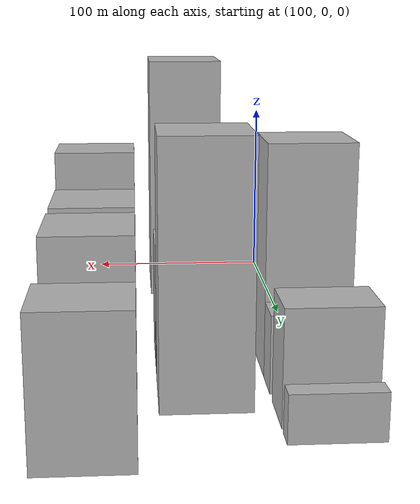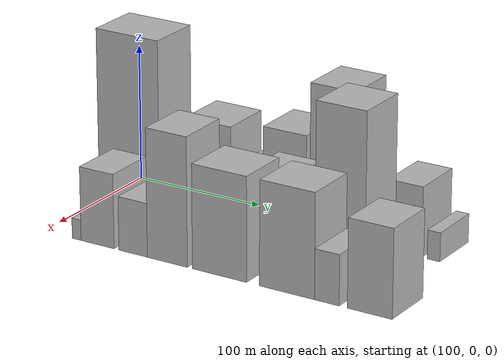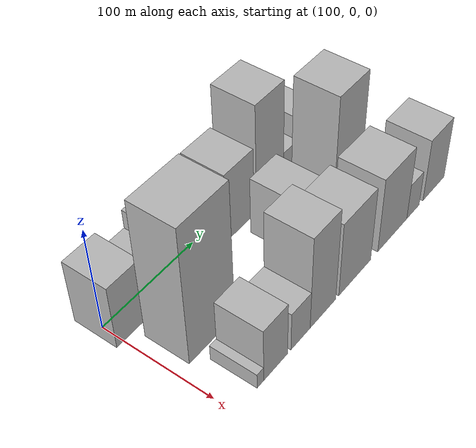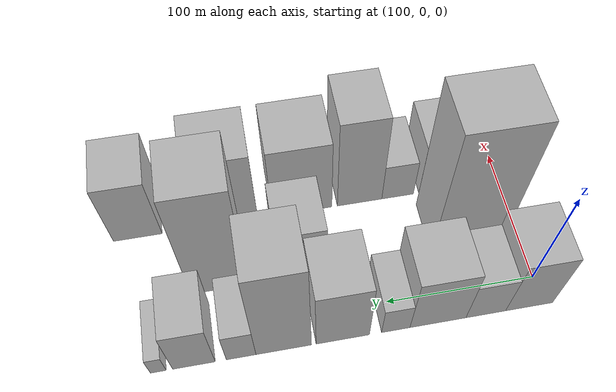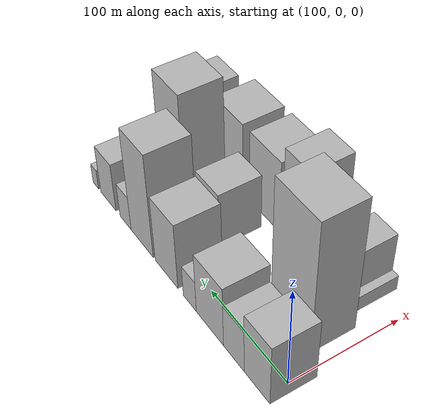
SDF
<sdf version="1.6">
 <world name="default">
  <model name="building_15">
   <static>1</static>
   <pose>100.0000 9.0524 0 0.000000 0.000000 0.000000</pose>
   <link name="link">
    <pose>0 0 31.50 0 0 0</pose>
    <collision name="collision"><geometry><box><size>40.0000 32.1481 63.0000</size></box></geometry></collision>
    <visual name="visual">
     <cast_shadows>0</cast_shadows>
     <geometry><box><size>40.0000 32.1481 63.0000</size></box></geometry>
     <material>
      <script>
       <uri>model://HANNAS_wall/materials/scripts</uri>
       <uri>model://HANNAS_wall/materials/textures</uri>
       <name>vrc/HANNAS_wall</name>
      </script>
     </material>
    </visual>
   </link>
  </model>
  <model name="building_16">
   <static>1</static>
   <pose>100.0000 38.5215 0 0.000000 0.000000 0.000000</pose>
   <link name="link">
    <pose>0 0 22.50 0 0 0</pose>
    <collision name="collision"><geometry><box><size>40.0000 26.7901 45.0000</size></box></geometry></collision>
    <visual name="visual">
     <cast_shadows>0</cast_shadows>
     <geometry><box><size>40.0000 26.7901 45.0000</size></box></geometry>
     <material>
      <script>
       <uri>model://HANNAS_wall/materials/scripts</uri>
       <uri>model://HANNAS_wall/materials/textures</uri>
       <name>vrc/HANNAS_wall</name>
      </script>
     </material>
    </visual>
   </link>
  </model>
  <model name="building_17">
   <static>1</static>
   <pose>100.0000 70.6206 0 0.000000 0.000000 0.000000</pose>
   <link name="link">
    <pose>0 0 31.50 0 0 0</pose>
    <collision name="collision"><geometry><box><size>40.0000 37.4082 63.0000</size></box></geometry></collision>
    <visual name="visual">
     <cast_shadows>0</cast_shadows>
     <geometry><box><size>40.0000 37.4082 63.0000</size></box></geometry>
     <material>
      <script>
       <uri>model://HANNAS_wall/materials/scripts</uri>
       <uri>model://HANNAS_wall/materials/textures</uri>
       <name>vrc/HANNAS_wall</name>
      </script>
     </material>
    </visual>
   </link>
  </model>
  <model name="building_18">
   <static>1</static>
   <pose>100.0000 98.6573 0 0.000000 0.000000 0.000000</pose>
   <link name="link">
    <pose>0 0 16.50 0 0 0</pose>
    <collision name="collision"><geometry><box><size>40.0000 18.6651 33.0000</size></box></geometry></collision>
    <visual name="visual">
     <cast_shadows>0</cast_shadows>
     <geometry><box><size>40.0000 18.6651 33.0000</size></box></geometry>
     <material>
      <script>
       <uri>model://HANNAS_wall/materials/scripts</uri>
       <uri>model://HANNAS_wall/materials/textures</uri>
       <name>vrc/HANNAS_wall</name>
      </script>
     </material>
    </visual>
   </link>
  </model>
  <model name="building_19">
   <static>1</static>
   <pose>100.0000 133.3318 0 0.000000 0.000000 0.000000</pose>
   <link name="link">
    <pose>0 0 34.50 0 0 0</pose>
    <collision name="collision"><geometry><box><size>40.0000 34.6839 69.0000</size></box></geometry></collision>
    <visual name="visual">
     <cast_shadows>0</cast_shadows>
     <geometry><box><size>40.0000 34.6839 69.0000</size></box></geometry>
     <material>
      <script>
       <uri>model://HANNAS_wall/materials/scripts</uri>
       <uri>model://HANNAS_wall/materials/textures</uri>
       <name>vrc/HANNAS_wall</name>
      </script>
     </material>
    </visual>
   </link>
  </model>
  <model name="building_20">
   <static>1</static>
   <pose>100.0000 171.4548 0 0.000000 0.000000 0.000000</pose>
   <link name="link">
    <pose>0 0 54.00 0 0 0</pose>
    <collision name="collision"><geometry><box><size>40.0000 35.5620 108.0000</size></box></geometry></collision>
    <visual name="visual">
     <cast_shadows>0</cast_shadows>
     <geometry><box><size>40.0000 35.5620 108.0000</size></box></geometry>
     <material>
      <script>
       <uri>model://HANNAS_wall/materials/scripts</uri>
       <uri>model://HANNAS_wall/materials/textures</uri>
       <name>vrc/HANNAS_wall</name>
      </script>
     </material>
    </visual>
   </link>
  </model>
  <model name="building_21">
   <static>1</static>
   <pose>100.0000 198.6346 0 0.000000 0.000000 0.000000</pose>
   <link name="link">
    <pose>0 0 18.00 0 0 0</pose>
    <collision name="collision"><geometry><box><size>40.0000 18.7976 36.0000</size></box></geometry></collision>
    <visual name="visual">
     <cast_shadows>0</cast_shadows>
     <geometry><box><size>40.0000 18.7976 36.0000</size></box></geometry>
     <material>
      <script>
       <uri>model://HANNAS_wall/materials/scripts</uri>
       <uri>model://HANNAS_wall/materials/textures</uri>
       <name>vrc/HANNAS_wall</name>
      </script>
     </material>
    </visual>
   </link>
  </model>
  <model name="building_22">
   <static>1</static>
   <pose>100.0000 228.3697 0 0.000000 0.000000 0.000000</pose>
   <link name="link">
    <pose>0 0 25.50 0 0 0</pose>
    <collision name="collision"><geometry><box><size>40.0000 26.6725 51.0000</size></box></geometry></collision>
    <visual name="visual">
     <cast_shadows>0</cast_shadows>
     <geometry><box><size>40.0000 26.6725 51.0000</size></box></geometry>
     <material>
      <script>
       <uri>model://HANNAS_wall/materials/scripts</uri>
       <uri>model://HANNAS_wall/materials/textures</uri>
       <name>vrc/HANNAS_wall</name>
      </script>
     </material>
    </visual>
   </link>
  </model>
  <model name="building_23">
   <static>1</static>
   <pose>100.0000 250.6202 0 0.000000 0.000000 0.000000</pose>
   <link name="link">
    <pose>0 0 10.50 0 0 0</pose>
    <collision name="collision"><geometry><box><size>40.0000 9.8286 21.0000</size></box></geometry></collision>
    <visual name="visual">
     <cast_shadows>0</cast_shadows>
     <geometry><box><size>40.0000 9.8286 21.0000</size></box></geometry>
     <material>
      <script>
       <uri>model://HANNAS_wall/materials/scripts</uri>
       <uri>model://HANNAS_wall/materials/textures</uri>
       <name>vrc/HANNAS_wall</name>
      </script>
     </material>
    </visual>
   </link>
  </model>
  <model name="building_48">
   <static>1</static>
   <pose>149.0000 37.3845 0 0.000000 0.000000 0.000000</pose>
   <link name="link">
    <pose>0 0 67.50 0 0 0</pose>
    <collision name="collision"><geometry><box><size>40.0000 50.5159 135.0000</size></box></geometry></collision>
    <visual name="visual">
     <cast_shadows>0</cast_shadows>
     <geometry><box><size>40.0000 50.5159 135.0000</size></box></geometry>
     <material>
      <script>
       <uri>model://HANNAS_wall/materials/scripts</uri>
       <uri>model://HANNAS_wall/materials/textures</uri>
       <name>vrc/HANNAS_wall</name>
      </script>
     </material>
    </visual>
   </link>
  </model>
  <model name="building_49">
   <static>1</static>
   <pose>149.0000 150.6117 0 0.000000 0.000000 0.000000</pose>
   <link name="link">
    <pose>0 0 28.50 0 0 0</pose>
    <collision name="collision"><geometry><box><size>40.0000 32.6462 57.0000</size></box></geometry></collision>
    <visual name="visual">
     <cast_shadows>0</cast_shadows>
     <geometry><box><size>40.0000 32.6462 57.0000</size></box></geometry>
     <material>
      <script>
       <uri>model://HANNAS_wall/materials/scripts</uri>
       <uri>model://HANNAS_wall/materials/textures</uri>
       <name>vrc/HANNAS_wall</name>
      </script>
     </material>
    </visual>
   </link>
  </model>
  <model name="building_50">
   <static>1</static>
   <pose>149.0000 172.1413 0 0.000000 0.000000 0.000000</pose>
   <link name="link">
    <pose>0 0 10.50 0 0 0</pose>
    <collision name="collision"><geometry><box><size>40.0000 10.4131 21.0000</size></box></geometry></collision>
    <visual name="visual">
     <cast_shadows>0</cast_shadows>
     <geometry><box><size>40.0000 10.4131 21.0000</size></box></geometry>
     <material>
      <script>
       <uri>model://HANNAS_wall/materials/scripts</uri>
       <uri>model://HANNAS_wall/materials/textures</uri>
       <name>vrc/HANNAS_wall</name>
      </script>
     </material>
    </visual>
   </link>
  </model>
  <model name="building_51">
   <static>1</static>
   <pose>149.0000 182.4895 0 0.000000 0.000000 0.000000</pose>
   <link name="link">
    <pose>0 0 12.00 0 0 0</pose>
    <collision name="collision"><geometry><box><size>40.0000 10.2833 24.0000</size></box></geometry></collision>
    <visual name="visual">
     <cast_shadows>0</cast_shadows>
     <geometry><box><size>40.0000 10.2833 24.0000</size></box></geometry>
     <material>
      <script>
       <uri>model://HANNAS_wall/materials/scripts</uri>
       <uri>model://HANNAS_wall/materials/textures</uri>
       <name>vrc/HANNAS_wall</name>
      </script>
     </material>
    </visual>
   </link>
  </model>
  <model name="building_52">
   <static>1</static>
   <pose>149.0000 206.8425 0 0.000000 0.000000 0.000000</pose>
   <link name="link">
    <pose>0 0 58.50 0 0 0</pose>
    <collision name="collision"><geometry><box><size>40.0000 38.4228 117.0000</size></box></geometry></collision>
    <visual name="visual">
     <cast_shadows>0</cast_shadows>
     <geometry><box><size>40.0000 38.4228 117.0000</size></box></geometry>
     <material>
      <script>
       <uri>model://HANNAS_wall/materials/scripts</uri>
       <uri>model://HANNAS_wall/materials/textures</uri>
       <name>vrc/HANNAS_wall</name>
      </script>
     </material>
    </visual>
   </link>
  </model>
  <model name="building_74">
   <static>1</static>
   <pose>198.0000 27.3871 0 0.000000 0.000000 0.000000</pose>
   <link name="link">
    <pose>0 0 7.50 0 0 0</pose>
    <collision name="collision"><geometry><box><size>40.0000 7.3352 15.0000</size></box></geometry></collision>
    <visual name="visual">
     <cast_shadows>0</cast_shadows>
     <geometry><box><size>40.0000 7.3352 15.0000</size></box></geometry>
     <material>
      <script>
       <uri>model://HANNAS_wall/materials/scripts</uri>
       <uri>model://HANNAS_wall/materials/textures</uri>
       <name>vrc/HANNAS_wall</name>
      </script>
     </material>
    </visual>
   </link>
  </model>
  <model name="building_75">
   <static>1</static>
   <pose>198.0000 44.7673 0 0.000000 0.000000 0.000000</pose>
   <link name="link">
    <pose>0 0 27.00 0 0 0</pose>
    <collision name="collision"><geometry><box><size>40.0000 27.4253 54.0000</size></box></geometry></collision>
    <visual name="visual">
     <cast_shadows>0</cast_shadows>
     <geometry><box><size>40.0000 27.4253 54.0000</size></box></geometry>
     <material>
      <script>
       <uri>model://HANNAS_wall/materials/scripts</uri>
       <uri>model://HANNAS_wall/materials/textures</uri>
       <name>vrc/HANNAS_wall</name>
      </script>
     </material>
    </visual>
   </link>
  </model>
  <model name="building_76">
   <static>1</static>
   <pose>198.0000 74.0511 0 0.000000 0.000000 0.000000</pose>
   <link name="link">
    <pose>0 0 19.50 0 0 0</pose>
    <collision name="collision"><geometry><box><size>40.0000 23.1424 39.0000</size></box></geometry></collision>
    <visual name="visual">
     <cast_shadows>0</cast_shadows>
     <geometry><box><size>40.0000 23.1424 39.0000</size></box></geometry>
     <material>
      <script>
       <uri>model://HANNAS_wall/materials/scripts</uri>
       <uri>model://HANNAS_wall/materials/textures</uri>
       <name>vrc/HANNAS_wall</name>
      </script>
     </material>
    </visual>
   </link>
  </model>
  <model name="building_77">
   <static>1</static>
   <pose>198.0000 101.7412 0 0.000000 0.000000 0.000000</pose>
   <link name="link">
    <pose>0 0 46.50 0 0 0</pose>
    <collision name="collision"><geometry><box><size>40.0000 32.2377 93.0000</size></box></geometry></collision>
    <visual name="visual">
     <cast_shadows>0</cast_shadows>
     <geometry><box><size>40.0000 32.2377 93.0000</size></box></geometry>
     <material>
      <script>
       <uri>model://HANNAS_wall/materials/scripts</uri>
       <uri>model://HANNAS_wall/materials/textures</uri>
       <name>vrc/HANNAS_wall</name>
      </script>
     </material>
    </visual>
   </link>
  </model>
  <model name="building_78">
   <static>1</static>
   <pose>198.0000 143.2325 0 0.000000 0.000000 0.000000</pose>
   <link name="link">
    <pose>0 0 37.50 0 0 0</pose>
    <collision name="collision"><geometry><box><size>40.0000 42.7450 75.0000</size></box></geometry></collision>
    <visual name="visual">
     <cast_shadows>0</cast_shadows>
     <geometry><box><size>40.0000 42.7450 75.0000</size></box></geometry>
     <material>
      <script>
       <uri>model://HANNAS_wall/materials/scripts</uri>
       <uri>model://HANNAS_wall/materials/textures</uri>
       <name>vrc/HANNAS_wall</name>
      </script>
     </material>
    </visual>
   </link>
  </model>
  <model name="building_79">
   <static>1</static>
   <pose>198.0000 195.7150 0 0.000000 0.000000 0.000000</pose>
   <link name="link">
    <pose>0 0 37.50 0 0 0</pose>
    <collision name="collision"><geometry><box><size>40.0000 42.2200 75.0000</size></box></geometry></collision>
    <visual name="visual">
     <cast_shadows>0</cast_shadows>
     <geometry><box><size>40.0000 42.2200 75.0000</size></box></geometry>
     <material>
      <script>
       <uri>model://HANNAS_wall/materials/scripts</uri>
       <uri>model://HANNAS_wall/materials/textures</uri>
       <name>vrc/HANNAS_wall</name>
      </script>
     </material>
    </visual>
   </link>
  </model>
  <model name="building_80">
   <static>1</static>
   <pose>198.0000 226.1357 0 0.000000 0.000000 0.000000</pose>
   <link name="link">
    <pose>0 0 18.00 0 0 0</pose>
    <collision name="collision"><geometry><box><size>40.0000 18.6213 36.0000</size></box></geometry></collision>
    <visual name="visual">
     <cast_shadows>0</cast_shadows>
     <geometry><box><size>40.0000 18.6213 36.0000</size></box></geometry>
     <material>
      <script>
       <uri>model://HANNAS_wall/materials/scripts</uri>
       <uri>model://HANNAS_wall/materials/textures</uri>
       <name>vrc/HANNAS_wall</name>
      </script>
     </material>
    </visual>
   </link>
  </model>
  <model name="building_81">
   <static>1</static>
   <pose>198.0000 258.1320 0 0.000000 0.000000 0.000000</pose>
   <link name="link">
    <pose>0 0 31.50 0 0 0</pose>
    <collision name="collision"><geometry><box><size>40.0000 33.3714 63.0000</size></box></geometry></collision>
    <visual name="visual">
     <cast_shadows>0</cast_shadows>
     <geometry><box><size>40.0000 33.3714 63.0000</size></box></geometry>
     <material>
      <script>
       <uri>model://HANNAS_wall/materials/scripts</uri>
       <uri>model://HANNAS_wall/materials/textures</uri>
       <name>vrc/HANNAS_wall</name>
      </script>
     </material>
    </visual>
   </link>
  </model>
 </world>
</sdf>
